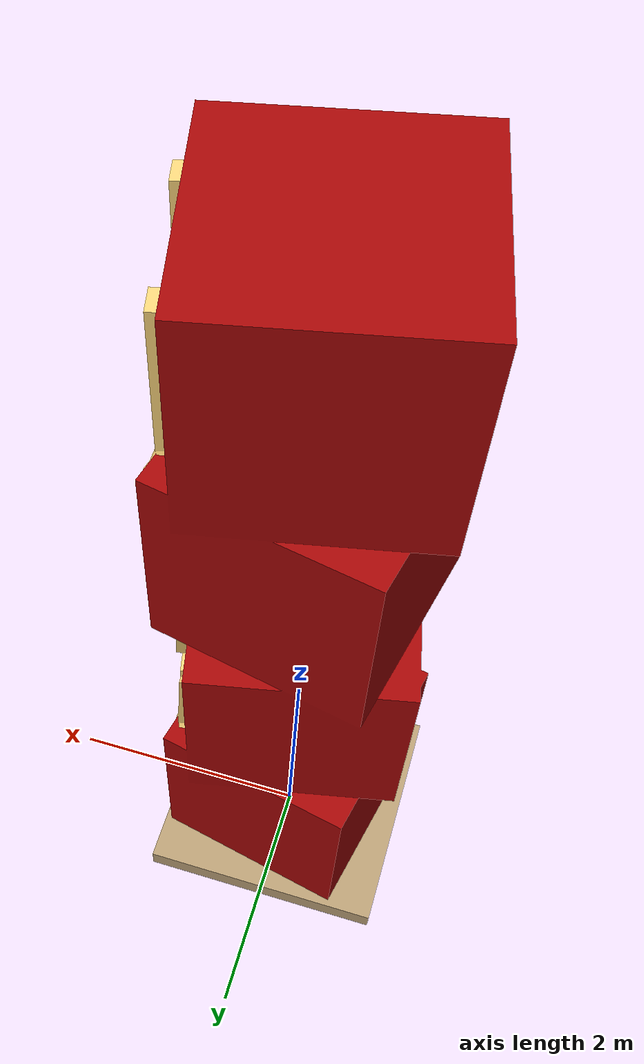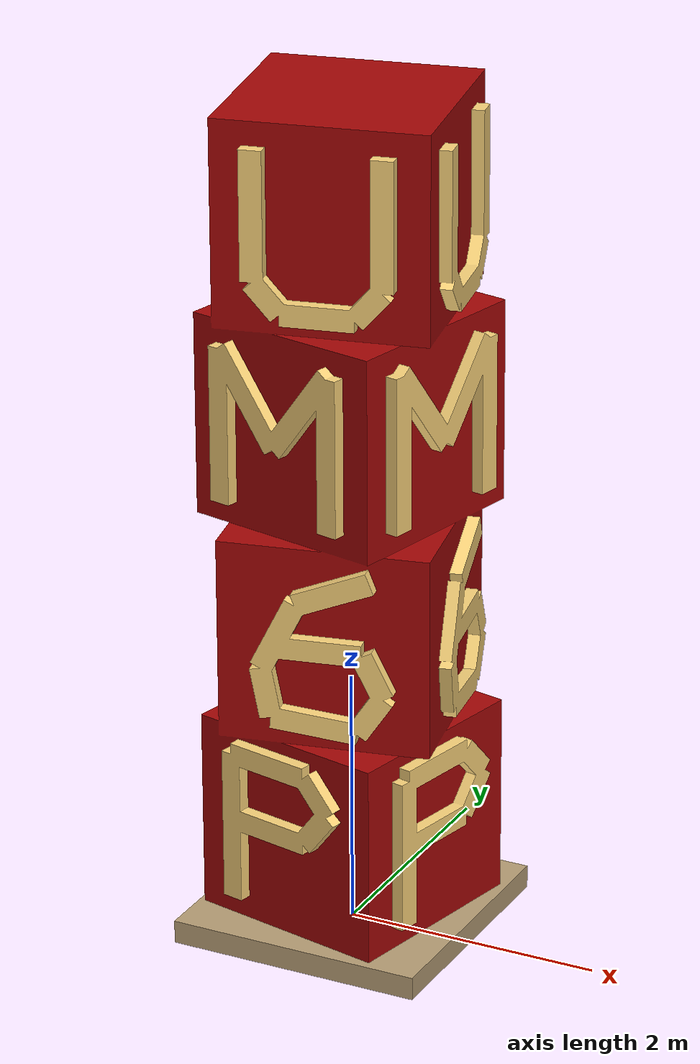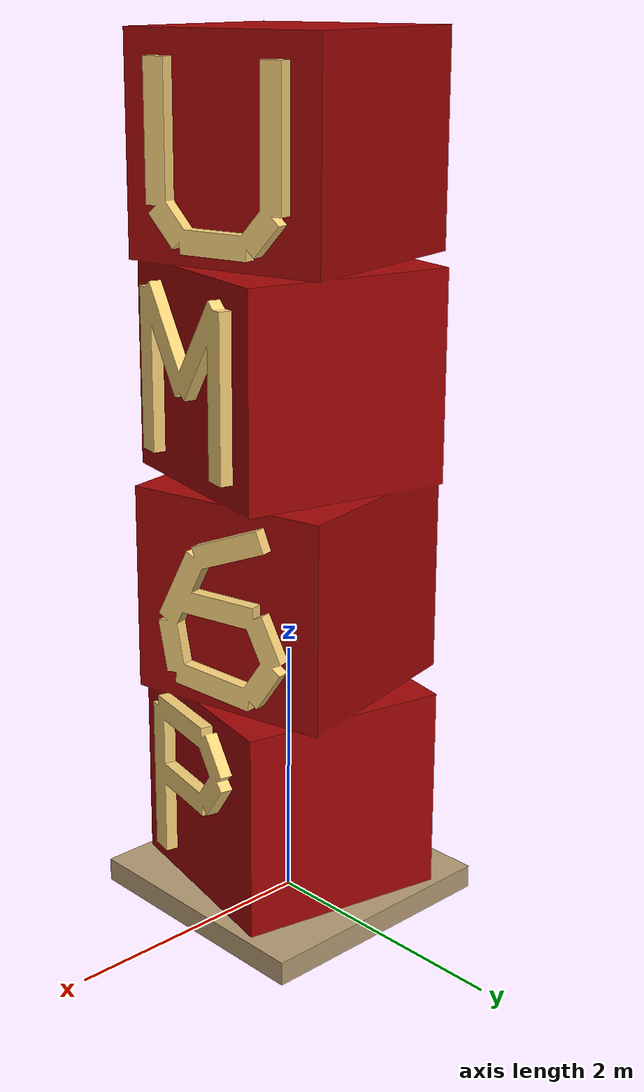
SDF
<?xml version='1.0' encoding='utf-8'?>
<sdf version="1.10">
  <model name="um6p_landmark">
    <static>true</static>
    <link name="body">
      <visual name="letter">
        <geometry>
          <mesh>
            <uri>model://um6p_landmark/meshes/letter.obj</uri>
          </mesh>
        </geometry>
        <material>
          <ambient>0.98 0.83 0.48 1</ambient>
          <diffuse>0.98 0.83 0.48 1</diffuse>
          <specular>.08 .08 .08 1</specular>
        </material>
      </visual>
      <visual name="red">
        <geometry>
          <mesh>
            <uri>model://um6p_landmark/meshes/red.obj</uri>
          </mesh>
        </geometry>
        <material>
          <ambient>0.65 0.025 0.025 1</ambient>
          <diffuse>0.65 0.025 0.025 1</diffuse>
          <specular>.08 .08 .08 1</specular>
        </material>
      </visual>
      <visual name="stone">
        <geometry>
          <mesh>
            <uri>model://um6p_landmark/meshes/stone.obj</uri>
          </mesh>
        </geometry>
        <material>
          <ambient>0.72 0.62 0.46 1</ambient>
          <diffuse>0.72 0.62 0.46 1</diffuse>
          <specular>.08 .08 .08 1</specular>
        </material>
      </visual>
    </link>
  </model>
</sdf>
